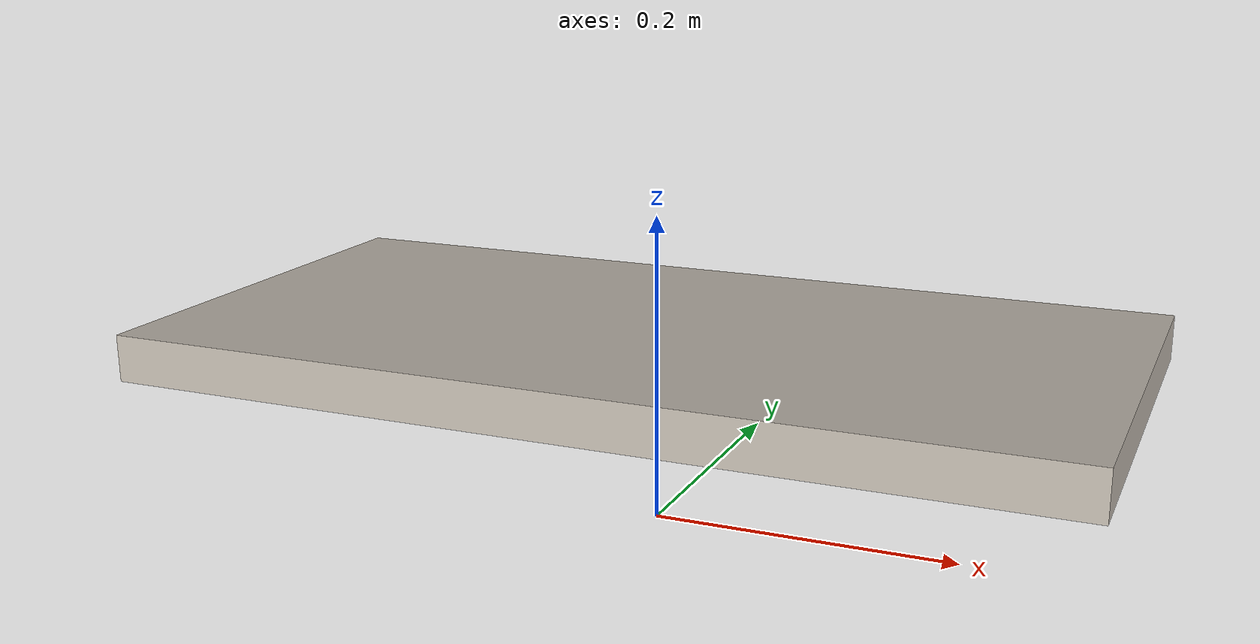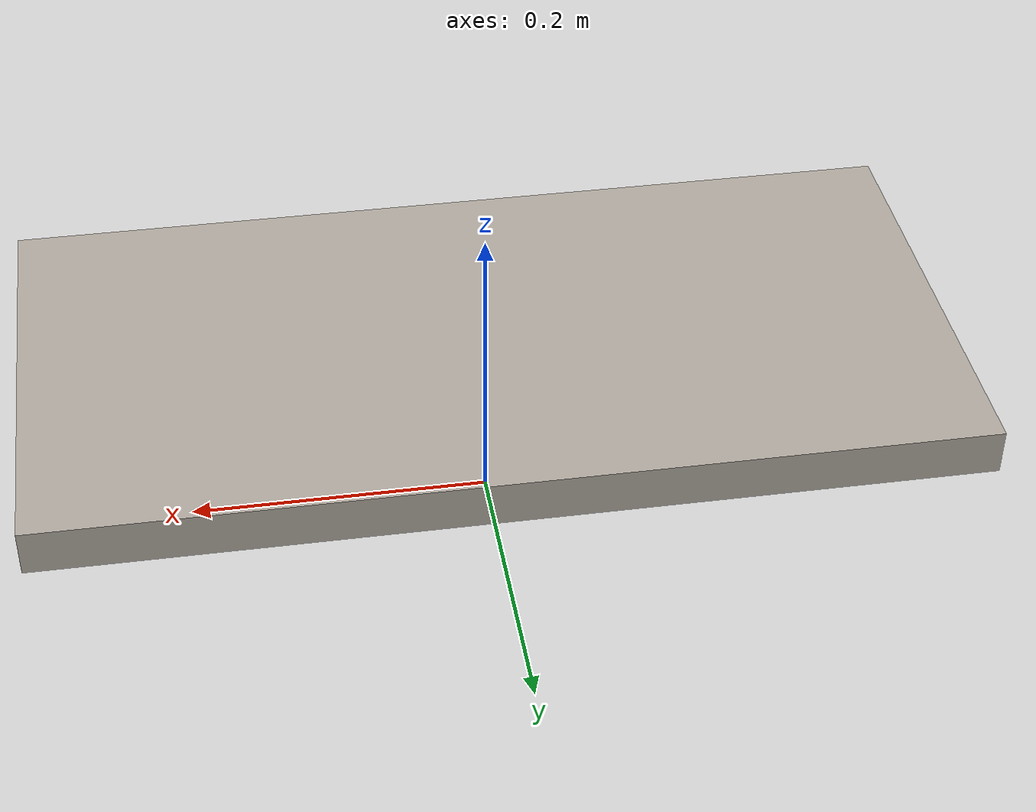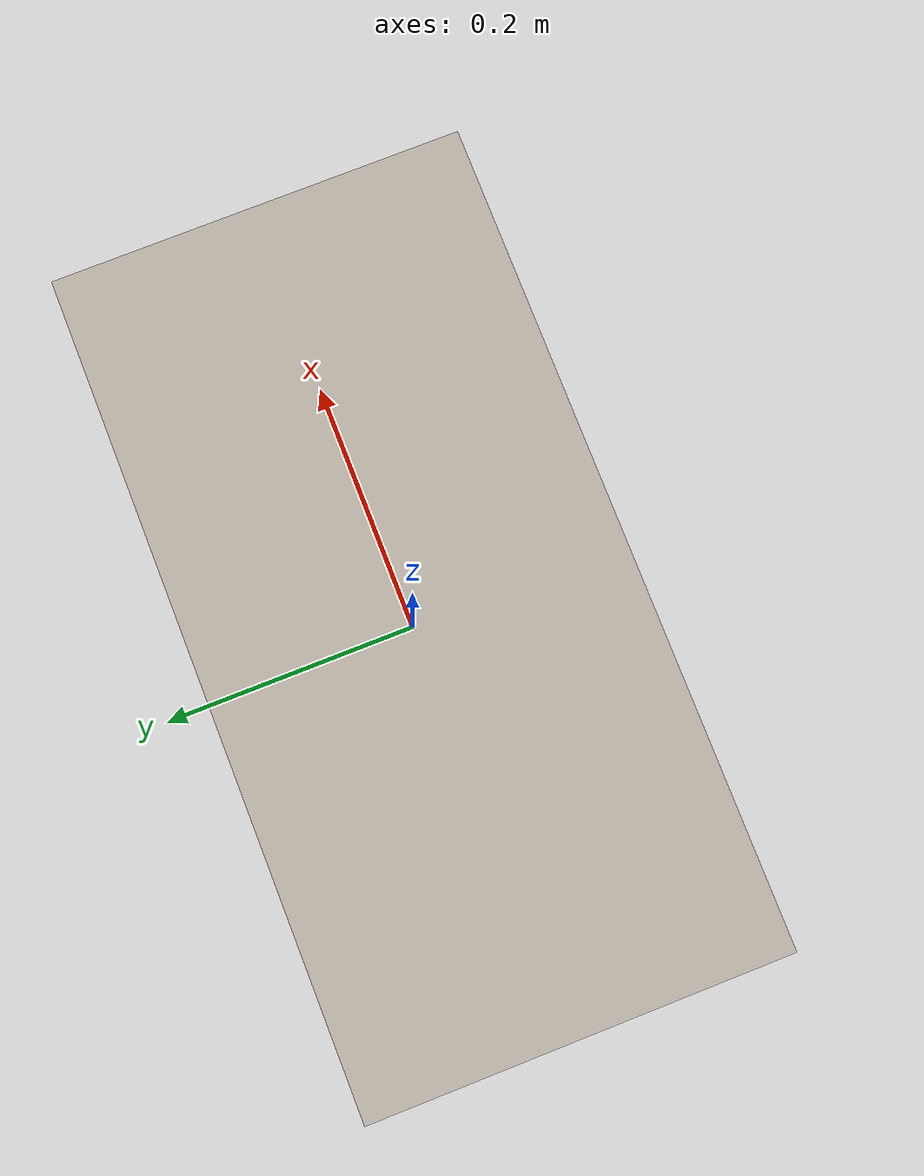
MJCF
<mujoco model="desk_surface">
  <asset>
    <mesh file="meshes/desk_surface.stl" name="desk_surface" scale="0.001 0.001 0.001"/>
    <texture file="meshes/textures/bread.png" type="2d" name="tex-bread" />
    <material name="bread" reflectance="0.7" texrepeat="15 15" texture="tex-bread" texuniform="true"/>
  </asset>
  <worldbody>
    <body>
      <body name="object">
        <joint type="free" />
        <geom pos="0 0 0.1" mesh="desk_surface" material="bread" type="mesh" solimp="0.9 0.95 0.001" friction="0.95 0.3 0.1" solref="0.02 1" density="1000" group="0"/>
      </body>
      <site rgba="0 0 0 0" size="0.005" pos="0 0 0" name="bottom_site"/>
      <site rgba="0 0 0 0" size="0.005" pos="0 0 0.03" name="top_site"/>
      <site rgba="0 0 0 0" size="0.005" pos="0.03 0.03 0" name="horizontal_radius_site"/>
    </body>
  </worldbody>
</mujoco>
